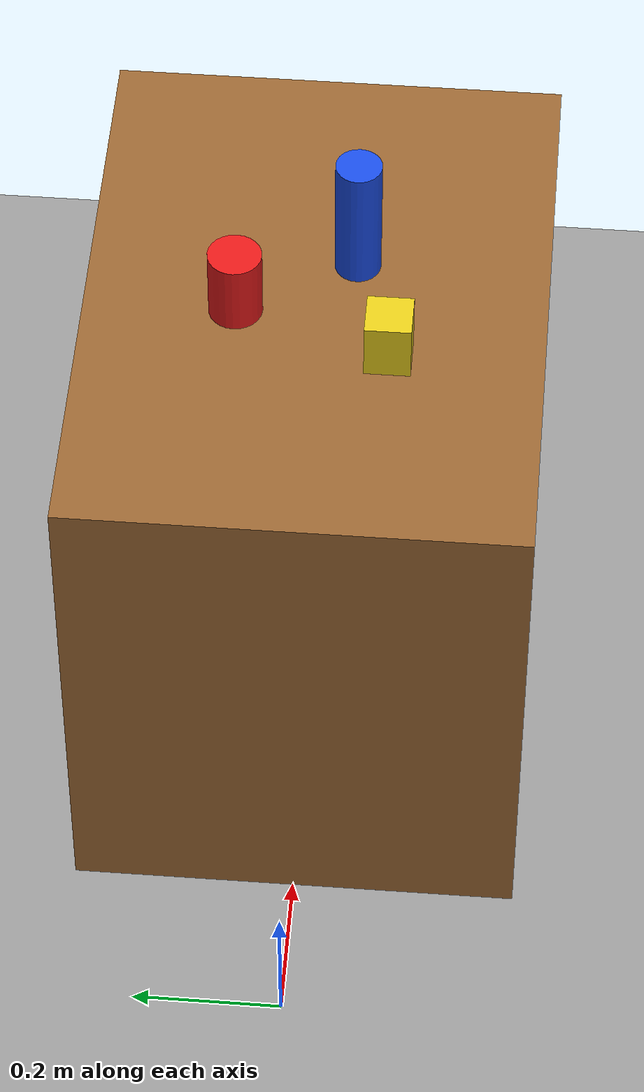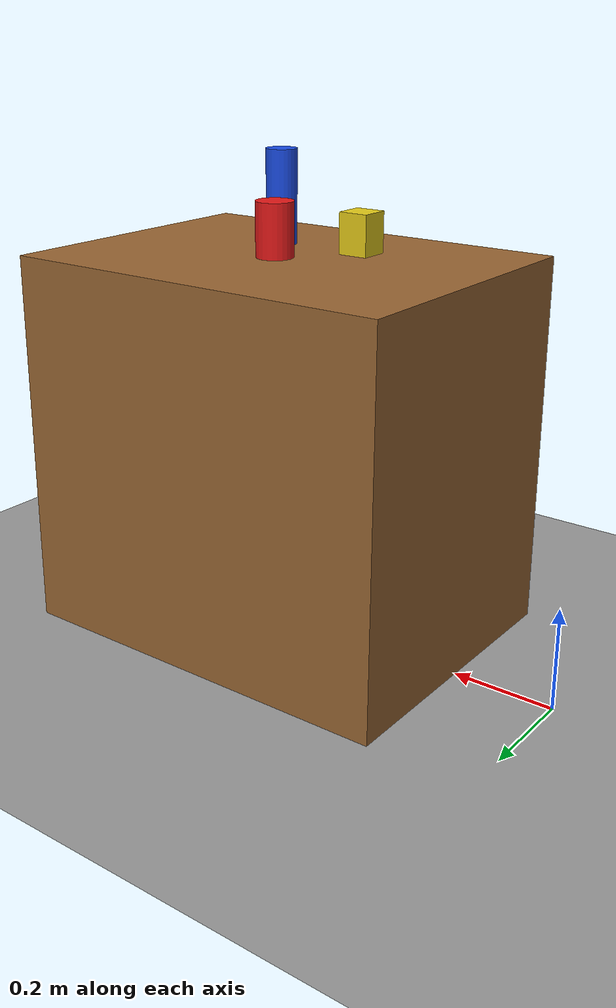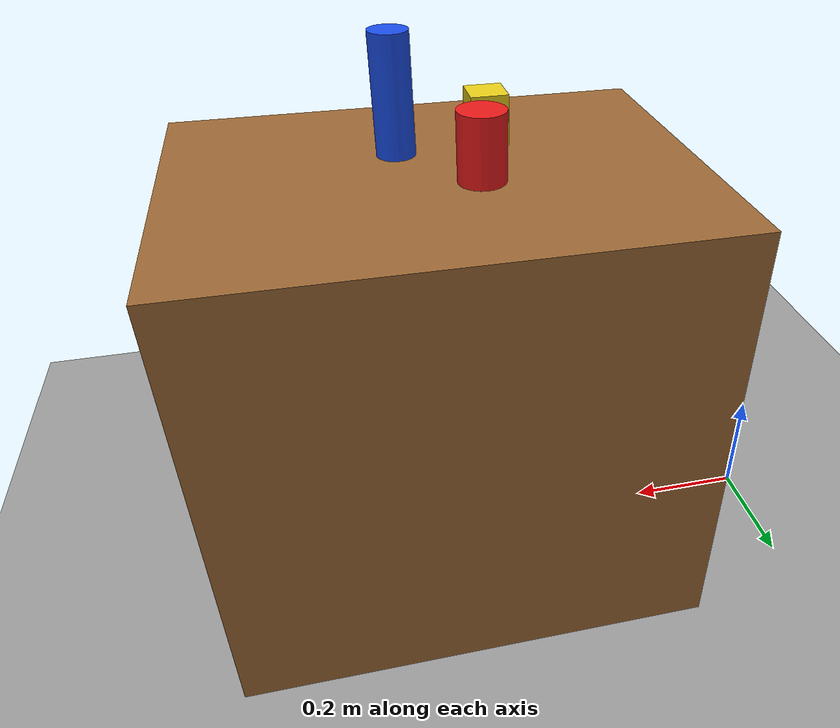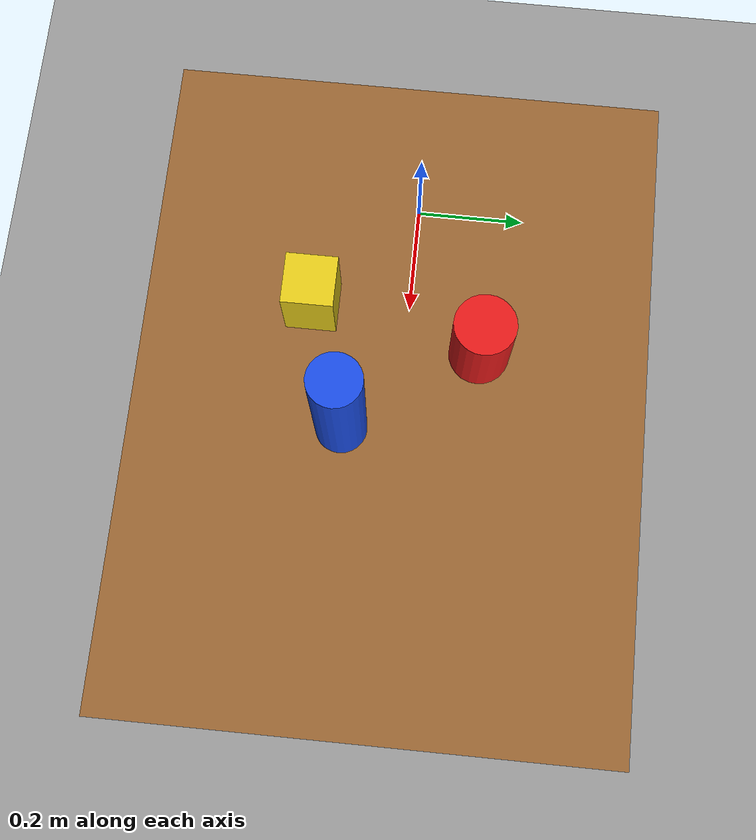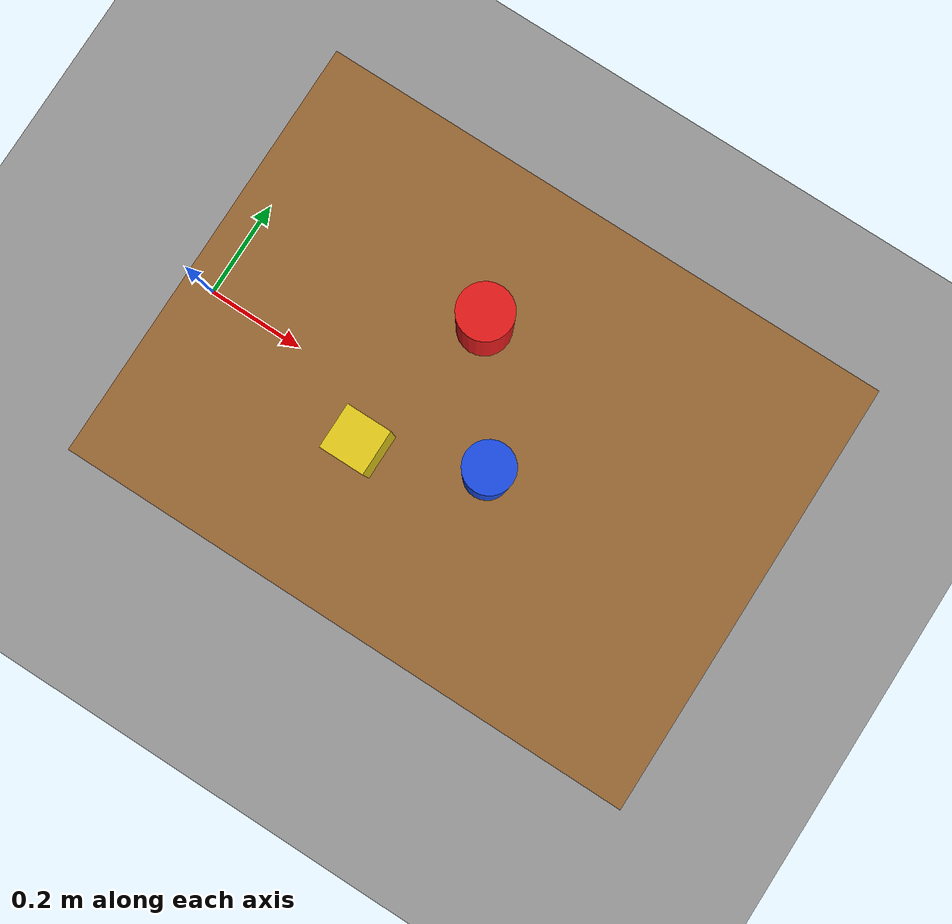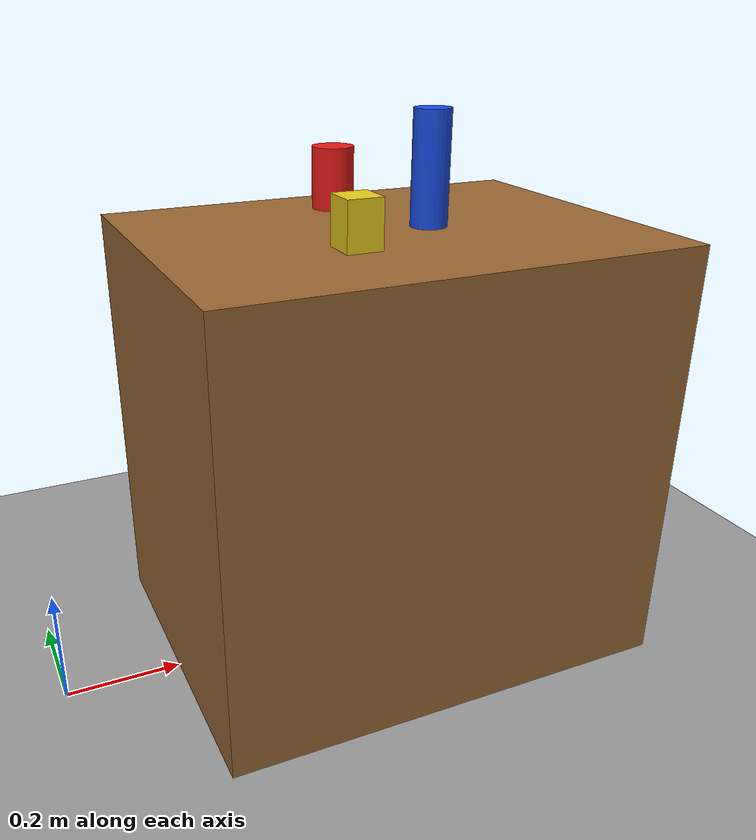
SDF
<?xml version="1.0"?>
<sdf version="1.9">
  <!--
    tabletop.world — 桌面抓取场景
    包含：桌子 + 几个常见物体（杯子、瓶子、盒子）
    用途：Pick & Place 任务测试
  -->
  <world name="tabletop">

    <!-- 物理引擎 -->
    <physics type="ode">
      <max_step_size>0.001</max_step_size>
      <real_time_factor>1.0</real_time_factor>
      <real_time_update_rate>1000</real_time_update_rate>
    </physics>

    <!-- 光照 -->
    <light name="sun" type="directional">
      <cast_shadows>true</cast_shadows>
      <direction>-0.5 0.1 -0.9</direction>
      <diffuse>0.8 0.8 0.8 1</diffuse>
      <specular>0.2 0.2 0.2 1</specular>
    </light>

    <!-- 地面 -->
    <model name="ground_plane">
      <static>true</static>
      <link name="link">
        <collision name="collision">
          <geometry><plane><normal>0 0 1</normal><size>10 10</size></plane></geometry>
        </collision>
        <visual name="visual">
          <geometry><plane><normal>0 0 1</normal><size>10 10</size></plane></geometry>
          <material><ambient>0.6 0.6 0.6 1</ambient></material>
        </visual>
      </link>
    </model>

    <!-- 桌子 -->
    <model name="table">
      <static>true</static>
      <pose>0.6 0 0.375 0 0 0</pose>
      <link name="link">
        <collision name="collision">
          <geometry><box><size>0.8 0.6 0.75</size></box></geometry>
        </collision>
        <visual name="visual">
          <geometry><box><size>0.8 0.6 0.75</size></box></geometry>
          <material>
            <ambient>0.6 0.4 0.2 1</ambient>
            <diffuse>0.6 0.4 0.2 1</diffuse>
          </material>
        </visual>
      </link>
    </model>

    <!-- 红色杯子 -->
    <model name="red_cup">
      <pose>0.55 0.1 0.82 0 0 0</pose>
      <link name="link">
        <inertial><mass>0.05</mass></inertial>
        <collision name="collision">
          <geometry><cylinder><radius>0.035</radius><length>0.1</length></cylinder></geometry>
        </collision>
        <visual name="visual">
          <geometry><cylinder><radius>0.035</radius><length>0.1</length></cylinder></geometry>
          <material>
            <ambient>0.9 0.1 0.1 1</ambient>
            <diffuse>0.9 0.1 0.1 1</diffuse>
          </material>
        </visual>
      </link>
    </model>

    <!-- 蓝色瓶子 -->
    <model name="blue_bottle">
      <pose>0.65 -0.05 0.85 0 0 0</pose>
      <link name="link">
        <inertial><mass>0.2</mass></inertial>
        <collision name="collision">
          <geometry><cylinder><radius>0.03</radius><length>0.18</length></cylinder></geometry>
        </collision>
        <visual name="visual">
          <geometry><cylinder><radius>0.03</radius><length>0.18</length></cylinder></geometry>
          <material>
            <ambient>0.1 0.3 0.9 1</ambient>
            <diffuse>0.1 0.3 0.9 1</diffuse>
          </material>
        </visual>
      </link>
    </model>

    <!-- 黄色小盒 -->
    <model name="yellow_box">
      <pose>0.5 -0.1 0.79 0 0 0</pose>
      <link name="link">
        <inertial><mass>0.1</mass></inertial>
        <collision name="collision">
          <geometry><box><size>0.06 0.06 0.08</size></box></geometry>
        </collision>
        <visual name="visual">
          <geometry><box><size>0.06 0.06 0.08</size></box></geometry>
          <material>
            <ambient>0.9 0.8 0.1 1</ambient>
            <diffuse>0.9 0.8 0.1 1</diffuse>
          </material>
        </visual>
      </link>
    </model>

  </world>
</sdf>
